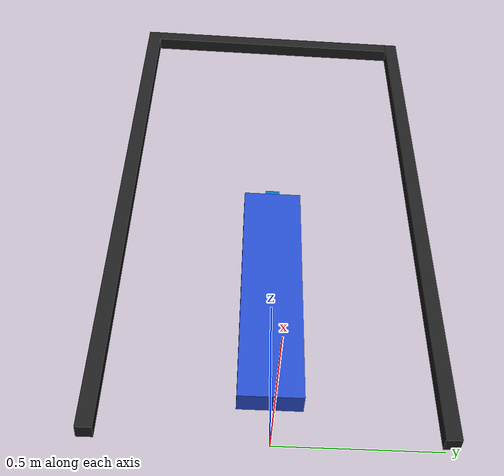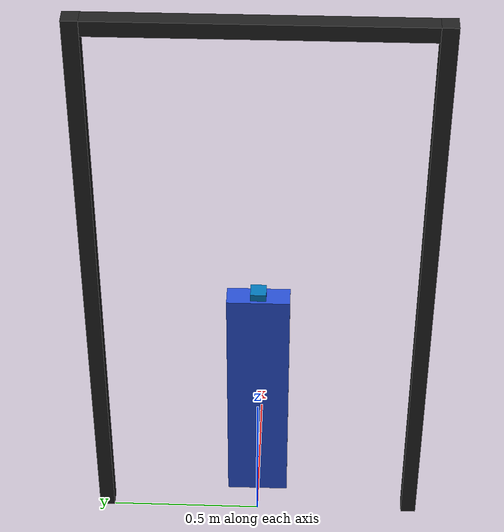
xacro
<?xml version="1.0"?>
<!-- Ghost Compass Biped + Crane -->
<robot name="cgcb" xmlns:xacro="http://www.ros.org/wiki/xacro">

  <!-- Constants for robot dimensions -->
  <xacro:property name="PI" value="3.1415926535897931"/>
  <!-- Height of talus link -->
  <!-- Height of foot link -->
  <!-- Length of foot link -->
  <!-- X displacement between talus and foot -->
  <!-- Talus link mass -->
  <!-- Foot link mass -->
  <xacro:property name="post_mass" value="0.5" />
  <xacro:property name="post_height" value="2" />
  <xacro:property name="post_width" value="1" />
  <xacro:property name="post_girth" value="0.05" />

  <xacro:property name="pelvis_mass" value="0.01" />
  <xacro:property name="pelvis_a" value="0.05" />

  <xacro:property name="leg_height" value="0.86" /> <!-- Height of leg link -->
  <xacro:property name="leg_width" value="0.2" /> <!-- Width of each leg link -->
  <xacro:property name="leg_girth" value="0.07" /> <!-- Girth of each leg link -->
  <xacro:property name="leg_mass" value="2.4" /> <!-- Leg link mass -->

  <!-- Import all Gazebo-customization elements, including Gazebo colors -->
  <xacro:include filename="$(find cgcb_description)/urdf/cgcb.gazebo" />

  <link name='world'/>

  <!-- Crane -->
  <link name='left_post'>
    <collision name='collision'>
      <origin xyz="0 0 ${-post_height/2}" rpy="0 0 0"/>
      <geometry>
        <box size="${post_girth} ${post_girth} ${post_height}" />
      </geometry>
    </collision>

    <visual name='visual'>
      <origin xyz="0 0 ${-post_height/2}" rpy="0 0 0"/>
      <geometry>
        <box size="${post_girth} ${post_girth} ${post_height}" />
      </geometry>
    </visual>

    <inertial name='inertial'>
      <origin xyz="0 0 ${-post_height/2}" rpy="0 0 0"/>
      <mass value="${2*post_mass}" />
      <inertia ixx="${1/6*post_mass*(post_height*post_height+post_girth*post_girth)}" ixy="0" ixz="0"
          iyy="${1/6*post_mass*(post_height*post_height+post_girth*post_girth)}" iyz="0"
          izz="${1/6*post_mass*(post_girth*post_girth+post_girth*post_girth)}" />
    </inertial>
  </link>

  <link name='right_post'>
    <collision name='collision'>
      <origin xyz="0 0 ${-post_height/2}" rpy="0 0 0"/>
      <geometry>
        <box size="${post_girth} ${post_girth} ${post_height}" />
      </geometry>
    </collision>

    <visual name='visual'>
      <origin xyz="0 0 ${-post_height/2}" rpy="0 0 0"/>
      <geometry>
        <box size="${post_girth} ${post_girth} ${post_height}" />
      </geometry>
    </visual>

    <inertial name='inertial'>
      <origin xyz="0 0 ${-post_height/2}" rpy="0 0 0"/>
      <mass value="${2*post_mass}" />
      <inertia ixx="${1/6*post_mass*(post_height*post_height+post_girth*post_girth)}" ixy="0" ixz="0"
          iyy="${1/6*post_mass*(post_height*post_height+post_girth*post_girth)}" iyz="0"
          izz="${1/6*post_mass*(post_girth*post_girth+post_girth*post_girth)}" />
    </inertial>
  </link>

  <link name='top_post'>
    <collision name='collision'>
      <origin xyz="0 0 0" rpy="0 0 0"/>
      <geometry>
        <box size="${post_girth} ${post_width} ${post_girth}" />
      </geometry>
    </collision>

    <visual name='visual'>
      <origin xyz="0 0 0" rpy="0 0 0"/>
      <geometry>
        <box size="${post_girth} ${post_width} ${post_girth}" />
      </geometry>
    </visual>

    <inertial name='inertial'>
      <origin xyz="0 0 0" rpy="0 0 0"/>
      <mass value="${post_mass}" />
      <inertia ixx="${1/12*post_mass*(post_width*post_width+post_girth*post_girth)}" ixy="0" ixz="0"
          iyy="${1/12*post_mass*(post_girth*post_girth+post_girth*post_girth)}" iyz="0"
          izz="${1/12*post_mass*(post_girth*post_girth+post_width*post_width)}" />
    </inertial>
  </link>

  <link name='pelvis'>
    <collision name='collision'>
      <origin xyz="0 0 0" rpy="0 0 0"/>
      <geometry>
        <box size="${pelvis_a} ${pelvis_a} ${pelvis_a}" />
      </geometry>
    </collision>

    <visual name='visual'>
      <origin xyz="0 0 0" rpy="0 0 0"/>
      <geometry>
        <box size="${pelvis_a} ${pelvis_a} ${pelvis_a}" />
      </geometry>
    </visual>

    <inertial name='inertial'>
      <origin xyz="0 0 0" rpy="0 0 0"/>
      <mass value="${pelvis_mass}" />
      <inertia ixx="${1/6*pelvis_mass*pelvis_a*pelvis_a}" ixy="0" ixz="0"
          iyy="${1/6*pelvis_mass*pelvis_a*pelvis_a}" iyz="0"
          izz="${1/6*pelvis_mass*pelvis_a*pelvis_a}" />
    </inertial>
  </link>

  <!-- Left leg -->
  <link name='left_leg'>
    <collision name='collision'>
      <origin xyz="0 0 ${-leg_height/2}" rpy="0 0 0"/>
      <geometry>
        <box size="${leg_girth} ${leg_width} ${leg_height}" />
      </geometry>
    </collision>

    <visual name='visual'>
      <origin xyz="0 0 ${-leg_height/2}" rpy="0 0 0"/>
      <geometry>
        <box size="${leg_girth} ${leg_width} ${leg_height}" />
      </geometry>
    </visual>

    <inertial name='inertial'>
      <origin xyz="0 0 ${-leg_height/2}" rpy="0 0 0"/>
      <mass value="${leg_mass}" />
      <inertia ixx="${1/12*leg_mass*(leg_height*leg_height+leg_width*leg_width)}" ixy="0" ixz="0"
      		iyy="${1/12*leg_mass*(leg_height*leg_height+leg_girth*leg_girth)}" iyz="0"
      		izz="${1/12*leg_mass*(leg_girth*leg_girth+leg_width*leg_width)}" />
    </inertial>
  </link>

  <!-- Right leg -->

  <!-- Joints -->
  <joint name="right_frame_corner" type="fixed">
    <origin xyz="0 ${-post_width/2-post_girth/2} ${post_girth/2}" rpy="0 0 0"/>
    <parent link="top_post"/>
    <child link="right_post"/>
  </joint>

  <joint name="left_frame_corner" type="fixed">
    <origin xyz="0 ${post_width/2+post_girth/2} ${post_girth/2}" rpy="0 0 0"/>
    <parent link="top_post"/>
    <child link="left_post"/>
  </joint>

  <joint name="planar_x" type="prismatic">
    <origin xyz="0 0 ${post_height}" rpy="0 0 0"/>
    <axis xyz="1 0 0"/>
    <parent link="world"/>
    <child link="top_post"/>
    <dynamics damping="0.0" friction="0.0"/>
    <limit effort="500" lower="-1000" upper="1000" velocity="20"/>
    <safety_controller k_position="100" k_velocity="10" soft_lower_limit="-990" soft_upper_limit="990"/>
  </joint>

  <joint name="planar_z" type="prismatic">
    <origin xyz="0 0 ${1-post_height}" rpy="0 0 0"/>
    <axis xyz="0 0 1"/>
    <parent link="top_post"/>
    <child link="pelvis"/>
    <dynamics damping="0.0" friction="0.0"/>
    <limit effort="5000" lower="-5" upper="5" velocity="20"/>
    <safety_controller k_position="100" k_velocity="10" soft_lower_limit="-2" soft_upper_limit="2"/>
  </joint>

  <joint name="pelvis_joint" type="revolute">
    <origin xyz="0 0 0" rpy="0 0 0"/>
    <axis xyz="0 1 0"/>
    <parent link="pelvis"/>
    <child link="left_leg"/>
    <dynamics damping="0.0" friction="0.0"/>
    <limit effort="200" lower="-2" upper="2" velocity="10"/>
    <safety_controller k_position="100" k_velocity="10" soft_lower_limit="-1.9" soft_upper_limit="1.9"/>
  </joint>

  <transmission name="crane_x_tran">
    <type>transmission_interface/SimpleTransmission</type>
    <joint name="planar_x"/>
    <actuator name="crane_x_motor">
      <hardwareInterface>EffortJointInterface</hardwareInterface>
      <mechanicalReduction>1</mechanicalReduction>
    </actuator>
  </transmission>

  <transmission name="crane_z_tran">
    <type>transmission_interface/SimpleTransmission</type>
    <joint name="planar_z"/>
    <actuator name="crane_z_motor">
      <hardwareInterface>EffortJointInterface</hardwareInterface>
      <mechanicalReduction>1</mechanicalReduction>
    </actuator>
  </transmission>

  <transmission name="crane_rot_tran">
    <type>transmission_interface/SimpleTransmission</type>
    <joint name="pelvis_joint"/>
    <actuator name="crane_rot_motor">
      <hardwareInterface>EffortJointInterface</hardwareInterface>
      <mechanicalReduction>1</mechanicalReduction>
    </actuator>
  </transmission>

</robot>
